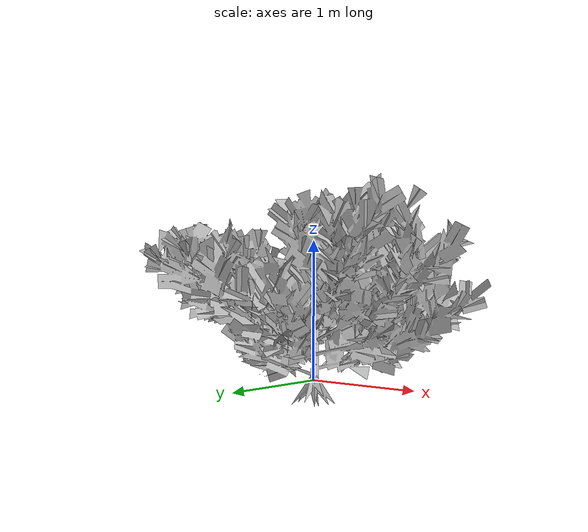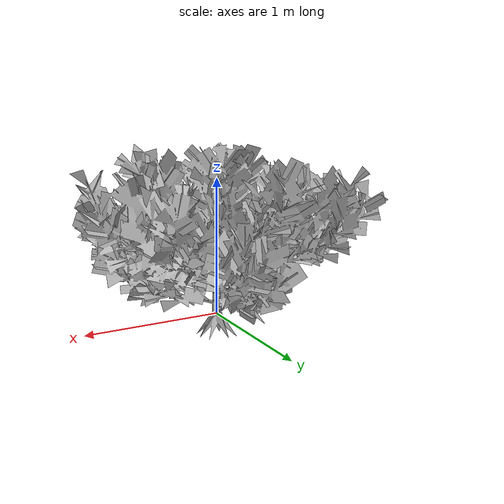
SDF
<?xml version="1.0" ?>
<sdf version="1.6">
  <model name="bush3">
    <static>1</static>
    <link name="link">
      <visual name="branch">
        <geometry>
          <mesh>
            <uri>model://bush3/meshes/OC29_3.obj</uri>
          </mesh>
        </geometry>
        <cast_shadows>1</cast_shadows>
      </visual>
    </link>
  </model>
</sdf>
